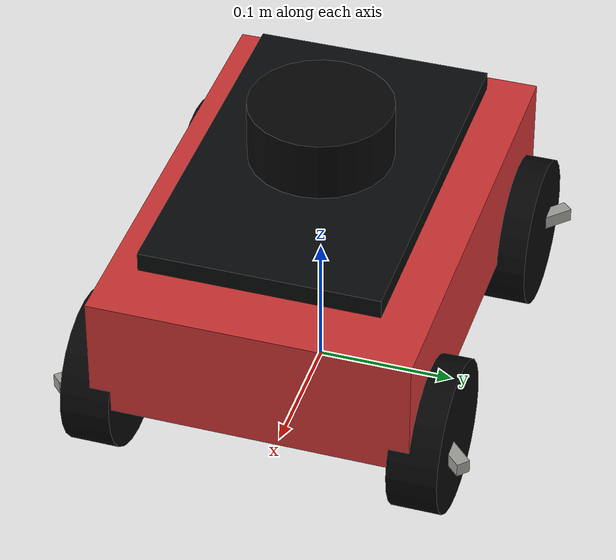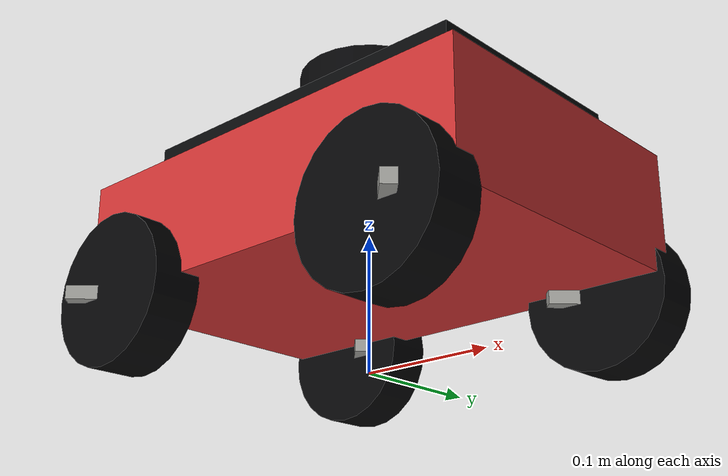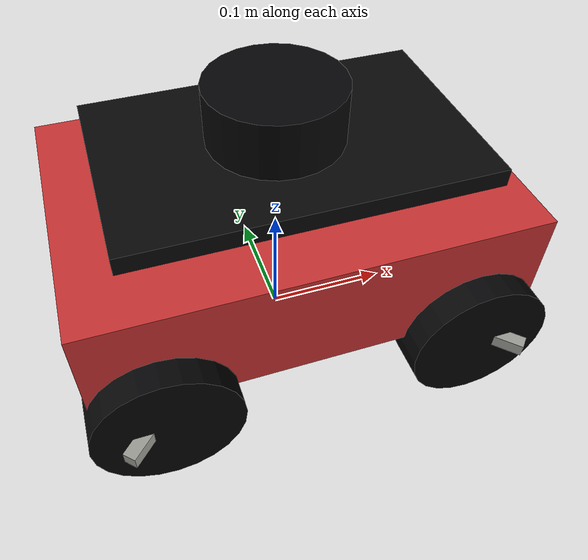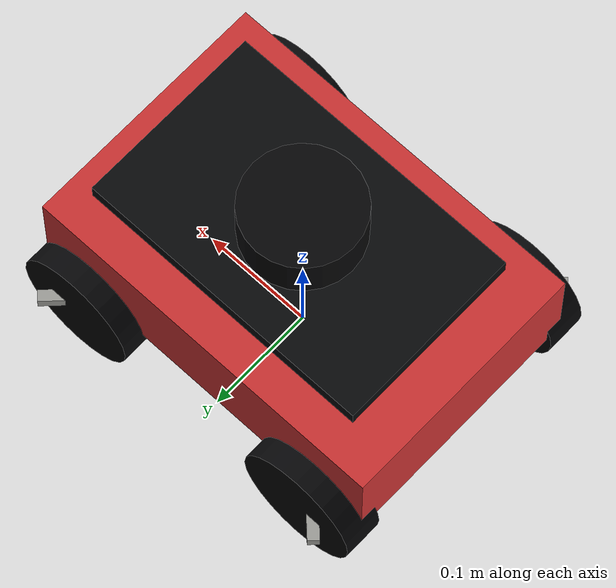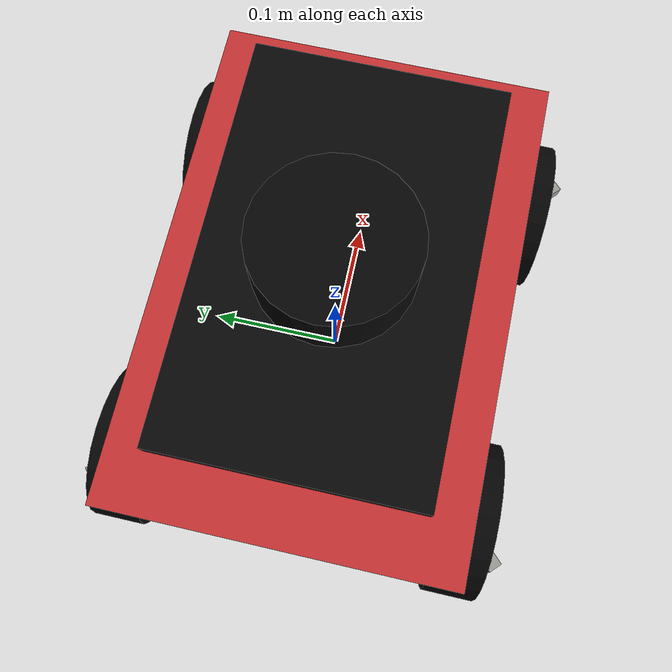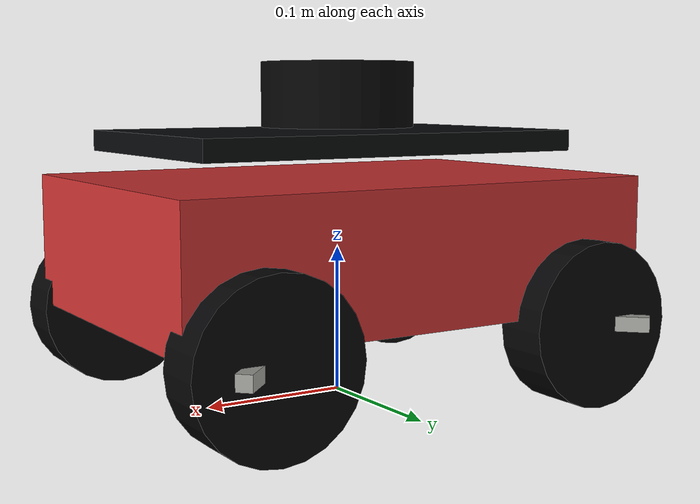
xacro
<?xml version="1.0"?>
<robot xmlns:xacro="http://www.ros.org/wiki/xacro" name="mrpp_mecanum_robot">
  <!-- Visualization-only URDF matching the formal Gazebo SDF footprint. -->
  <xacro:property name="base_length" value="0.34"/>
  <xacro:property name="base_width" value="0.23"/>
  <xacro:property name="base_height" value="0.09"/>
  <xacro:property name="wheel_radius" value="0.055"/>
  <xacro:property name="wheel_width" value="0.036"/>
  <xacro:property name="wheel_x" value="0.120"/>
  <xacro:property name="wheel_y" value="0.118"/>

  <material name="robot_red">
    <color rgba="0.8 0.2 0.2 1.0"/>
  </material>
  <material name="dark_gray">
    <color rgba="0.03 0.034 0.038 1.0"/>
  </material>
  <material name="metal">
    <color rgba="0.62 0.62 0.60 1.0"/>
  </material>
  <material name="black">
    <color rgba="0.02 0.02 0.025 1.0"/>
  </material>

  <link name="base_link">
    <visual name="chassis_visual">
      <origin xyz="0 0 0.105" rpy="0 0 0"/>
      <geometry>
        <box size="${base_length} ${base_width} ${base_height}"/>
      </geometry>
      <material name="robot_red"/>
    </visual>
    <visual name="upper_deck_visual">
      <origin xyz="0.005 0 0.174" rpy="0 0 0"/>
      <geometry>
        <box size="0.275 0.172 0.014"/>
      </geometry>
      <material name="dark_gray"/>
    </visual>
    <collision name="base_collision">
      <origin xyz="0 0 0.105" rpy="0 0 0"/>
      <geometry>
        <box size="0.30 0.20 0.10"/>
      </geometry>
    </collision>
    <inertial>
      <origin xyz="0 0 0.105" rpy="0 0 0"/>
      <mass value="2.2"/>
      <inertia ixx="0.025" ixy="0" ixz="0" iyy="0.035" iyz="0" izz="0.045"/>
    </inertial>
  </link>

  <link name="base_scan">
    <visual name="lidar_body_visual">
      <origin xyz="0 0 0" rpy="0 0 0"/>
      <geometry>
        <cylinder radius="0.052" length="0.044"/>
      </geometry>
      <material name="black"/>
    </visual>
    <inertial>
      <mass value="0.12"/>
      <inertia ixx="0.0001" ixy="0" ixz="0" iyy="0.0001" iyz="0" izz="0.0001"/>
    </inertial>
  </link>

  <xacro:macro name="mecanum_wheel" params="name x y roller_sign">
    <link name="${name}">
      <visual name="wheel_visual">
        <origin xyz="0 0 0" rpy="1.5708 0 0"/>
        <geometry>
          <cylinder radius="${wheel_radius}" length="${wheel_width}"/>
        </geometry>
        <material name="black"/>
      </visual>
      <visual name="roller_visual">
        <origin xyz="0 0 0" rpy="0 0 ${roller_sign * 0.7854}"/>
        <geometry>
          <box size="0.085 0.010 0.010"/>
        </geometry>
        <material name="metal"/>
      </visual>
      <collision name="wheel_collision">
        <origin xyz="0 0 0" rpy="1.5708 0 0"/>
        <geometry>
          <cylinder radius="${wheel_radius}" length="${wheel_width}"/>
        </geometry>
      </collision>
      <inertial>
        <mass value="0.18"/>
        <inertia ixx="0.00018" ixy="0" ixz="0" iyy="0.00018" iyz="0" izz="0.00024"/>
      </inertial>
    </link>
    <joint name="${name}_joint" type="continuous">
      <parent link="base_link"/>
      <child link="${name}"/>
      <origin xyz="${x} ${y} 0.055" rpy="0 0 0"/>
      <axis xyz="0 1 0"/>
    </joint>
  </xacro:macro>

  <xacro:mecanum_wheel name="front_left_wheel" x="${wheel_x}" y="${wheel_y}" roller_sign="1"/>
  <xacro:mecanum_wheel name="front_right_wheel" x="${wheel_x}" y="${-wheel_y}" roller_sign="-1"/>
  <xacro:mecanum_wheel name="back_left_wheel" x="${-wheel_x}" y="${wheel_y}" roller_sign="-1"/>
  <xacro:mecanum_wheel name="back_right_wheel" x="${-wheel_x}" y="${-wheel_y}" roller_sign="1"/>

  <joint name="lidar_joint" type="fixed">
    <parent link="base_link"/>
    <child link="base_scan"/>
    <origin xyz="0 0 0.205" rpy="0 0 0"/>
  </joint>
</robot>
